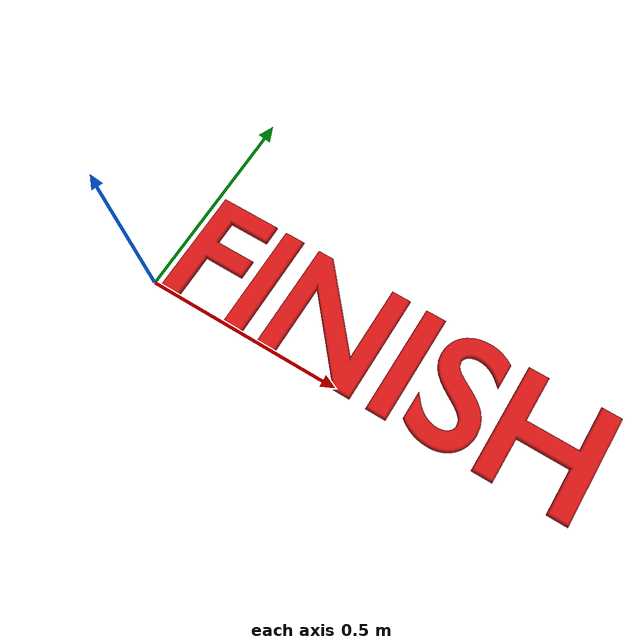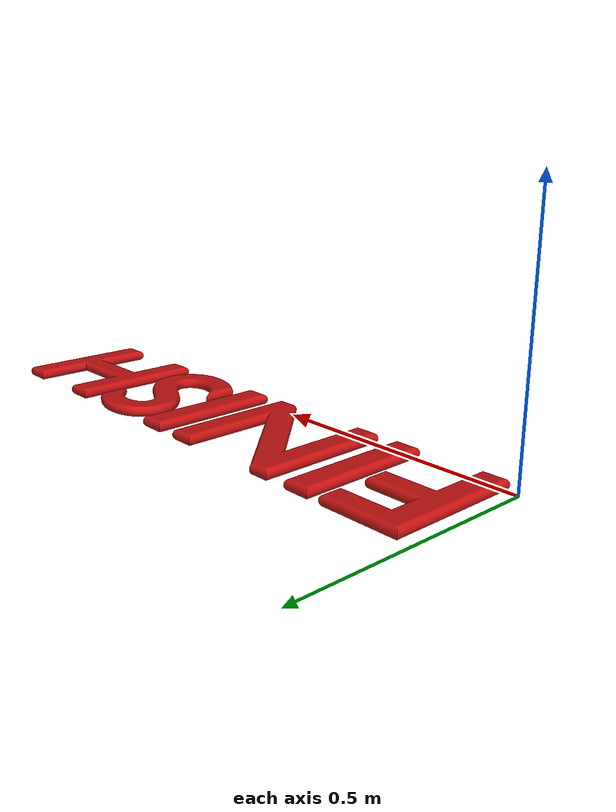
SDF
<?xml version="1.0" ?>
<sdf version='1.5'>
<model name='finish'>
<static>true</static>
<link name="link">
   <pose frame=''>0 0 0.01 0 0 0</pose>
  <visual name='finishV'>
    <cast_shadows>false</cast_shadows>
    <geometry>
      <mesh>
        <scale>1.0 1.0 1.0</scale>
        <uri>model://finish/model.dae</uri>
      </mesh>
    </geometry>
    <material>
      <script>
        <name>finish</name>
        <uri>model://finish/model.dae</uri>
      </script>
    </material>
  </visual>
</link>
</model>
</sdf>
